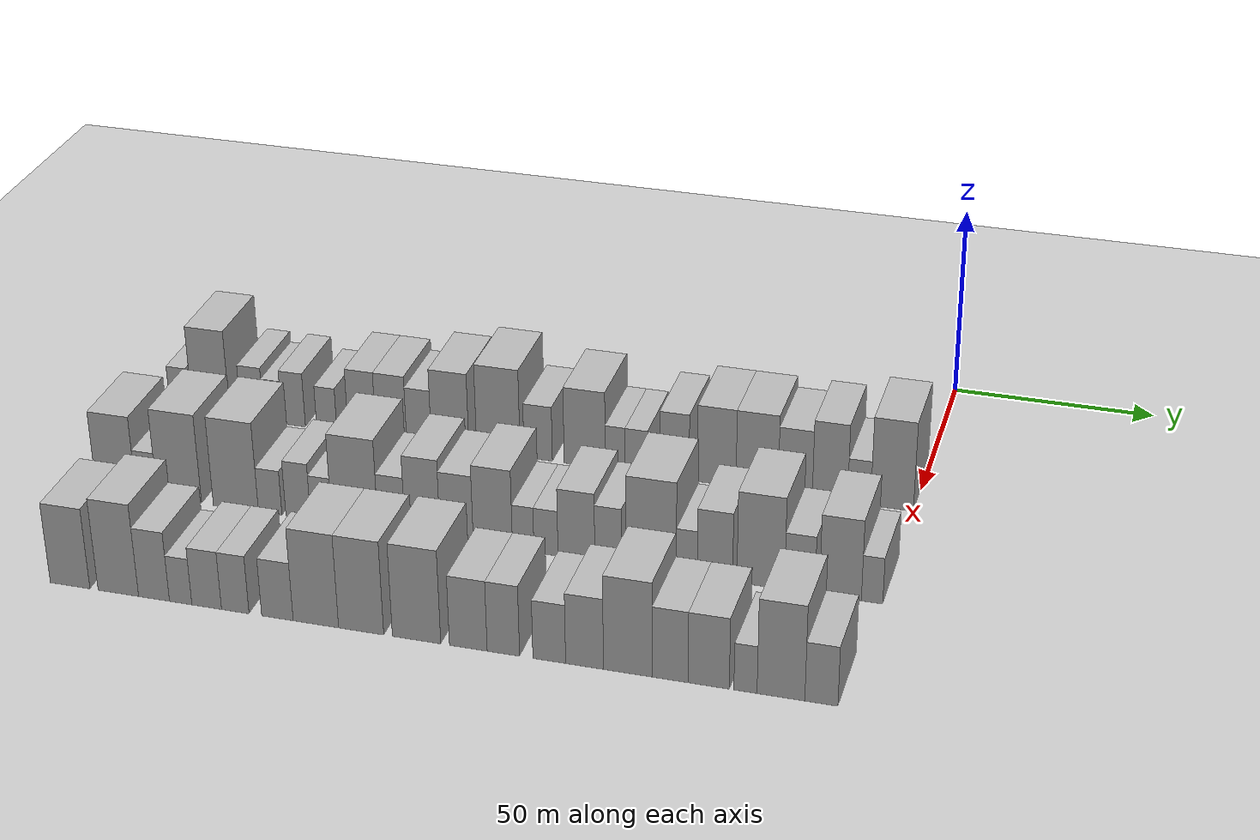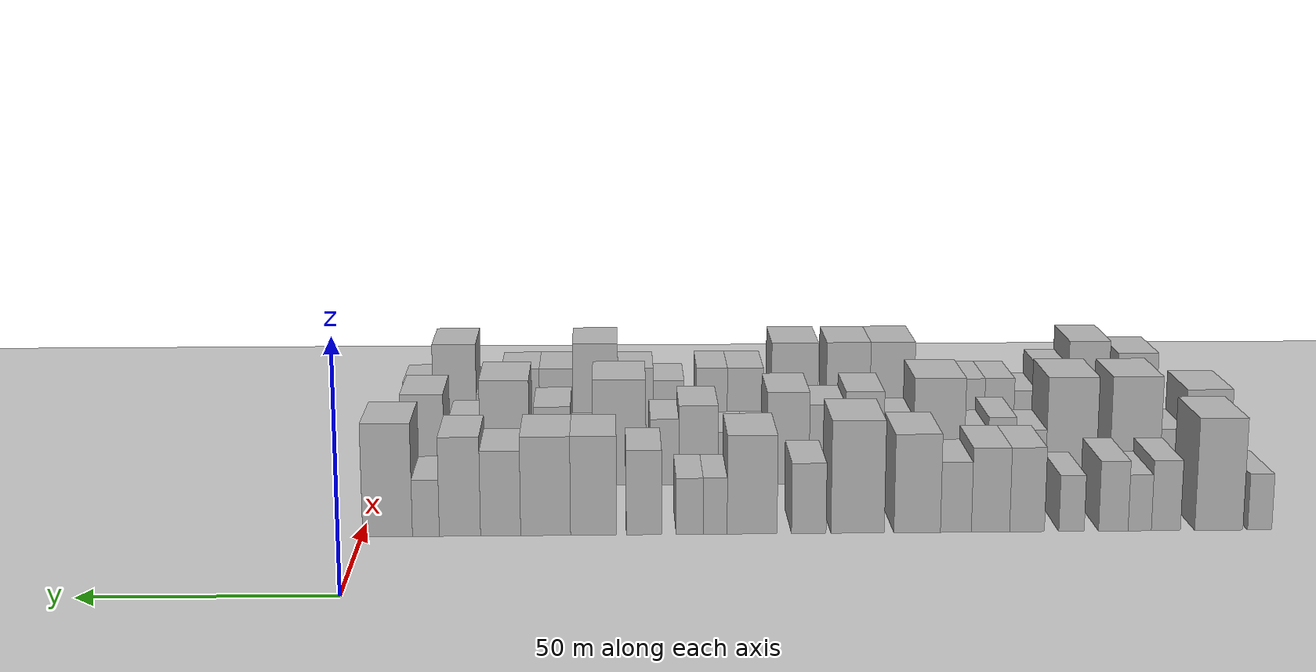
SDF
<sdf version="1.6">
 <world name="default">
  <include><name>ground_plane_1</name><uri>model://HANNAS_ground_plane</uri></include>
  <model name="building_20">
   <static>1</static>
   <pose>50.0000 -186.6804 0 0.000000 0.000000 0.000000</pose>
   <link name="link">
    <pose>0 0 6.00 0 0 0</pose>
    <collision name="collision"><geometry><box><size>20.0000 5.0669 12.0000</size></box></geometry></collision>
    <visual name="visual">
     <cast_shadows>0</cast_shadows>
     <geometry><box><size>20.0000 5.0669 12.0000</size></box></geometry>
     <material>
      <script>
       <uri>model://HANNAS_wall/materials/scripts</uri>
       <uri>model://HANNAS_wall/materials/textures</uri>
       <name>vrc/HANNAS_wall</name>
      </script>
     </material>
    </visual>
   </link>
  </model>
  <model name="building_21">
   <static>1</static>
   <pose>50.0000 -178.0910 0 0.000000 0.000000 0.000000</pose>
   <link name="link">
    <pose>0 0 12.00 0 0 0</pose>
    <collision name="collision"><geometry><box><size>20.0000 10.1119 24.0000</size></box></geometry></collision>
    <visual name="visual">
     <cast_shadows>0</cast_shadows>
     <geometry><box><size>20.0000 10.1119 24.0000</size></box></geometry>
     <material>
      <script>
       <uri>model://HANNAS_wall/materials/scripts</uri>
       <uri>model://HANNAS_wall/materials/textures</uri>
       <name>vrc/HANNAS_wall</name>
      </script>
     </material>
    </visual>
   </link>
  </model>
  <model name="building_22">
   <static>1</static>
   <pose>50.0000 -166.9902 0 0.000000 0.000000 0.000000</pose>
   <link name="link">
    <pose>0 0 7.50 0 0 0</pose>
    <collision name="collision"><geometry><box><size>20.0000 6.0898 15.0000</size></box></geometry></collision>
    <visual name="visual">
     <cast_shadows>0</cast_shadows>
     <geometry><box><size>20.0000 6.0898 15.0000</size></box></geometry>
     <material>
      <script>
       <uri>model://HANNAS_wall/materials/scripts</uri>
       <uri>model://HANNAS_wall/materials/textures</uri>
       <name>vrc/HANNAS_wall</name>
      </script>
     </material>
    </visual>
   </link>
  </model>
  <model name="building_23">
   <static>1</static>
   <pose>50.0000 -161.5102 0 0.000000 0.000000 0.000000</pose>
   <link name="link">
    <pose>0 0 6.00 0 0 0</pose>
    <collision name="collision"><geometry><box><size>20.0000 4.8701 12.0000</size></box></geometry></collision>
    <visual name="visual">
     <cast_shadows>0</cast_shadows>
     <geometry><box><size>20.0000 4.8701 12.0000</size></box></geometry>
     <material>
      <script>
       <uri>model://HANNAS_wall/materials/scripts</uri>
       <uri>model://HANNAS_wall/materials/textures</uri>
       <name>vrc/HANNAS_wall</name>
      </script>
     </material>
    </visual>
   </link>
  </model>
  <model name="building_24">
   <static>1</static>
   <pose>50.0000 -155.9890 0 0.000000 0.000000 0.000000</pose>
   <link name="link">
    <pose>0 0 7.50 0 0 0</pose>
    <collision name="collision"><geometry><box><size>20.0000 6.1724 15.0000</size></box></geometry></collision>
    <visual name="visual">
     <cast_shadows>0</cast_shadows>
     <geometry><box><size>20.0000 6.1724 15.0000</size></box></geometry>
     <material>
      <script>
       <uri>model://HANNAS_wall/materials/scripts</uri>
       <uri>model://HANNAS_wall/materials/textures</uri>
       <name>vrc/HANNAS_wall</name>
      </script>
     </material>
    </visual>
   </link>
  </model>
  <model name="building_25">
   <static>1</static>
   <pose>50.0000 -147.2446 0 0.000000 0.000000 0.000000</pose>
   <link name="link">
    <pose>0 0 6.00 0 0 0</pose>
    <collision name="collision"><geometry><box><size>20.0000 5.3164 12.0000</size></box></geometry></collision>
    <visual name="visual">
     <cast_shadows>0</cast_shadows>
     <geometry><box><size>20.0000 5.3164 12.0000</size></box></geometry>
     <material>
      <script>
       <uri>model://HANNAS_wall/materials/scripts</uri>
       <uri>model://HANNAS_wall/materials/textures</uri>
       <name>vrc/HANNAS_wall</name>
      </script>
     </material>
    </visual>
   </link>
  </model>
  <model name="building_26">
   <static>1</static>
   <pose>50.0000 -137.9398 0 0.000000 0.000000 0.000000</pose>
   <link name="link">
    <pose>0 0 9.00 0 0 0</pose>
    <collision name="collision"><geometry><box><size>20.0000 7.2933 18.0000</size></box></geometry></collision>
    <visual name="visual">
     <cast_shadows>0</cast_shadows>
     <geometry><box><size>20.0000 7.2933 18.0000</size></box></geometry>
     <material>
      <script>
       <uri>model://HANNAS_wall/materials/scripts</uri>
       <uri>model://HANNAS_wall/materials/textures</uri>
       <name>vrc/HANNAS_wall</name>
      </script>
     </material>
    </visual>
   </link>
  </model>
  <model name="building_27">
   <static>1</static>
   <pose>50.0000 -130.3020 0 0.000000 0.000000 0.000000</pose>
   <link name="link">
    <pose>0 0 9.00 0 0 0</pose>
    <collision name="collision"><geometry><box><size>20.0000 7.9821 18.0000</size></box></geometry></collision>
    <visual name="visual">
     <cast_shadows>0</cast_shadows>
     <geometry><box><size>20.0000 7.9821 18.0000</size></box></geometry>
     <material>
      <script>
       <uri>model://HANNAS_wall/materials/scripts</uri>
       <uri>model://HANNAS_wall/materials/textures</uri>
       <name>vrc/HANNAS_wall</name>
      </script>
     </material>
    </visual>
   </link>
  </model>
  <model name="building_28">
   <static>1</static>
   <pose>50.0000 -123.0889 0 0.000000 0.000000 0.000000</pose>
   <link name="link">
    <pose>0 0 7.50 0 0 0</pose>
    <collision name="collision"><geometry><box><size>20.0000 6.4442 15.0000</size></box></geometry></collision>
    <visual name="visual">
     <cast_shadows>0</cast_shadows>
     <geometry><box><size>20.0000 6.4442 15.0000</size></box></geometry>
     <material>
      <script>
       <uri>model://HANNAS_wall/materials/scripts</uri>
       <uri>model://HANNAS_wall/materials/textures</uri>
       <name>vrc/HANNAS_wall</name>
      </script>
     </material>
    </visual>
   </link>
  </model>
  <model name="building_29">
   <static>1</static>
   <pose>50.0000 -115.0239 0 0.000000 0.000000 0.000000</pose>
   <link name="link">
    <pose>0 0 10.50 0 0 0</pose>
    <collision name="collision"><geometry><box><size>20.0000 9.6858 21.0000</size></box></geometry></collision>
    <visual name="visual">
     <cast_shadows>0</cast_shadows>
     <geometry><box><size>20.0000 9.6858 21.0000</size></box></geometry>
     <material>
      <script>
       <uri>model://HANNAS_wall/materials/scripts</uri>
       <uri>model://HANNAS_wall/materials/textures</uri>
       <name>vrc/HANNAS_wall</name>
      </script>
     </material>
    </visual>
   </link>
  </model>
  <model name="building_30">
   <static>1</static>
   <pose>50.0000 -102.6167 0 0.000000 0.000000 0.000000</pose>
   <link name="link">
    <pose>0 0 12.00 0 0 0</pose>
    <collision name="collision"><geometry><box><size>20.0000 11.1286 24.0000</size></box></geometry></collision>
    <visual name="visual">
     <cast_shadows>0</cast_shadows>
     <geometry><box><size>20.0000 11.1286 24.0000</size></box></geometry>
     <material>
      <script>
       <uri>model://HANNAS_wall/materials/scripts</uri>
       <uri>model://HANNAS_wall/materials/textures</uri>
       <name>vrc/HANNAS_wall</name>
      </script>
     </material>
    </visual>
   </link>
  </model>
  <model name="building_31">
   <static>1</static>
   <pose>50.0000 -92.4663 0 0.000000 0.000000 0.000000</pose>
   <link name="link">
    <pose>0 0 7.50 0 0 0</pose>
    <collision name="collision"><geometry><box><size>20.0000 7.1721 15.0000</size></box></geometry></collision>
    <visual name="visual">
     <cast_shadows>0</cast_shadows>
     <geometry><box><size>20.0000 7.1721 15.0000</size></box></geometry>
     <material>
      <script>
       <uri>model://HANNAS_wall/materials/scripts</uri>
       <uri>model://HANNAS_wall/materials/textures</uri>
       <name>vrc/HANNAS_wall</name>
      </script>
     </material>
    </visual>
   </link>
  </model>
  <model name="building_32">
   <static>1</static>
   <pose>50.0000 -80.6968 0 0.000000 0.000000 0.000000</pose>
   <link name="link">
    <pose>0 0 10.50 0 0 0</pose>
    <collision name="collision"><geometry><box><size>20.0000 10.3671 21.0000</size></box></geometry></collision>
    <visual name="visual">
     <cast_shadows>0</cast_shadows>
     <geometry><box><size>20.0000 10.3671 21.0000</size></box></geometry>
     <material>
      <script>
       <uri>model://HANNAS_wall/materials/scripts</uri>
       <uri>model://HANNAS_wall/materials/textures</uri>
       <name>vrc/HANNAS_wall</name>
      </script>
     </material>
    </visual>
   </link>
  </model>
  <model name="building_33">
   <static>1</static>
   <pose>50.0000 -73.0282 0 0.000000 0.000000 0.000000</pose>
   <link name="link">
    <pose>0 0 6.00 0 0 0</pose>
    <collision name="collision"><geometry><box><size>20.0000 4.9700 12.0000</size></box></geometry></collision>
    <visual name="visual">
     <cast_shadows>0</cast_shadows>
     <geometry><box><size>20.0000 4.9700 12.0000</size></box></geometry>
     <material>
      <script>
       <uri>model://HANNAS_wall/materials/scripts</uri>
       <uri>model://HANNAS_wall/materials/textures</uri>
       <name>vrc/HANNAS_wall</name>
      </script>
     </material>
    </visual>
   </link>
  </model>
  <model name="building_34">
   <static>1</static>
   <pose>50.0000 -67.7406 0 0.000000 0.000000 0.000000</pose>
   <link name="link">
    <pose>0 0 6.00 0 0 0</pose>
    <collision name="collision"><geometry><box><size>20.0000 5.6054 12.0000</size></box></geometry></collision>
    <visual name="visual">
     <cast_shadows>0</cast_shadows>
     <geometry><box><size>20.0000 5.6054 12.0000</size></box></geometry>
     <material>
      <script>
       <uri>model://HANNAS_wall/materials/scripts</uri>
       <uri>model://HANNAS_wall/materials/textures</uri>
       <name>vrc/HANNAS_wall</name>
      </script>
     </material>
    </visual>
   </link>
  </model>
  <model name="building_35">
   <static>1</static>
   <pose>50.0000 -58.2778 0 0.000000 0.000000 0.000000</pose>
   <link name="link">
    <pose>0 0 9.00 0 0 0</pose>
    <collision name="collision"><geometry><box><size>20.0000 7.3202 18.0000</size></box></geometry></collision>
    <visual name="visual">
     <cast_shadows>0</cast_shadows>
     <geometry><box><size>20.0000 7.3202 18.0000</size></box></geometry>
     <material>
      <script>
       <uri>model://HANNAS_wall/materials/scripts</uri>
       <uri>model://HANNAS_wall/materials/textures</uri>
       <name>vrc/HANNAS_wall</name>
      </script>
     </material>
    </visual>
   </link>
  </model>
  <model name="building_36">
   <static>1</static>
   <pose>50.0000 -47.8521 0 0.000000 0.000000 0.000000</pose>
   <link name="link">
    <pose>0 0 10.50 0 0 0</pose>
    <collision name="collision"><geometry><box><size>20.0000 9.5311 21.0000</size></box></geometry></collision>
    <visual name="visual">
     <cast_shadows>0</cast_shadows>
     <geometry><box><size>20.0000 9.5311 21.0000</size></box></geometry>
     <material>
      <script>
       <uri>model://HANNAS_wall/materials/scripts</uri>
       <uri>model://HANNAS_wall/materials/textures</uri>
       <name>vrc/HANNAS_wall</name>
      </script>
     </material>
    </visual>
   </link>
  </model>
  <model name="building_37">
   <static>1</static>
   <pose>50.0000 -37.9294 0 0.000000 0.000000 0.000000</pose>
   <link name="link">
    <pose>0 0 10.50 0 0 0</pose>
    <collision name="collision"><geometry><box><size>20.0000 10.3145 21.0000</size></box></geometry></collision>
    <visual name="visual">
     <cast_shadows>0</cast_shadows>
     <geometry><box><size>20.0000 10.3145 21.0000</size></box></geometry>
     <material>
      <script>
       <uri>model://HANNAS_wall/materials/scripts</uri>
       <uri>model://HANNAS_wall/materials/textures</uri>
       <name>vrc/HANNAS_wall</name>
      </script>
     </material>
    </visual>
   </link>
  </model>
  <model name="building_38">
   <static>1</static>
   <pose>50.0000 -28.6333 0 0.000000 0.000000 0.000000</pose>
   <link name="link">
    <pose>0 0 9.00 0 0 0</pose>
    <collision name="collision"><geometry><box><size>20.0000 8.2775 18.0000</size></box></geometry></collision>
    <visual name="visual">
     <cast_shadows>0</cast_shadows>
     <geometry><box><size>20.0000 8.2775 18.0000</size></box></geometry>
     <material>
      <script>
       <uri>model://HANNAS_wall/materials/scripts</uri>
       <uri>model://HANNAS_wall/materials/textures</uri>
       <name>vrc/HANNAS_wall</name>
      </script>
     </material>
    </visual>
   </link>
  </model>
  <model name="building_39">
   <static>1</static>
   <pose>50.0000 -20.2456 0 0.000000 0.000000 0.000000</pose>
   <link name="link">
    <pose>0 0 10.50 0 0 0</pose>
    <collision name="collision"><geometry><box><size>20.0000 8.4980 21.0000</size></box></geometry></collision>
    <visual name="visual">
     <cast_shadows>0</cast_shadows>
     <geometry><box><size>20.0000 8.4980 21.0000</size></box></geometry>
     <material>
      <script>
       <uri>model://HANNAS_wall/materials/scripts</uri>
       <uri>model://HANNAS_wall/materials/textures</uri>
       <name>vrc/HANNAS_wall</name>
      </script>
     </material>
    </visual>
   </link>
  </model>
  <model name="building_40">
   <static>1</static>
   <pose>50.0000 -13.2256 0 0.000000 0.000000 0.000000</pose>
   <link name="link">
    <pose>0 0 6.00 0 0 0</pose>
    <collision name="collision"><geometry><box><size>20.0000 5.5419 12.0000</size></box></geometry></collision>
    <visual name="visual">
     <cast_shadows>0</cast_shadows>
     <geometry><box><size>20.0000 5.5419 12.0000</size></box></geometry>
     <material>
      <script>
       <uri>model://HANNAS_wall/materials/scripts</uri>
       <uri>model://HANNAS_wall/materials/textures</uri>
       <name>vrc/HANNAS_wall</name>
      </script>
     </material>
    </visual>
   </link>
  </model>
  <model name="building_41">
   <static>1</static>
   <pose>50.0000 -5.3358 0 0.000000 0.000000 0.000000</pose>
   <link name="link">
    <pose>0 0 12.00 0 0 0</pose>
    <collision name="collision"><geometry><box><size>20.0000 10.2376 24.0000</size></box></geometry></collision>
    <visual name="visual">
     <cast_shadows>0</cast_shadows>
     <geometry><box><size>20.0000 10.2376 24.0000</size></box></geometry>
     <material>
      <script>
       <uri>model://HANNAS_wall/materials/scripts</uri>
       <uri>model://HANNAS_wall/materials/textures</uri>
       <name>vrc/HANNAS_wall</name>
      </script>
     </material>
    </visual>
   </link>
  </model>
  <model name="building_106">
   <static>1</static>
   <pose>90.0000 -185.3101 0 0.000000 0.000000 0.000000</pose>
   <link name="link">
    <pose>0 0 10.50 0 0 0</pose>
    <collision name="collision"><geometry><box><size>20.0000 10.3520 21.0000</size></box></geometry></collision>
    <visual name="visual">
     <cast_shadows>0</cast_shadows>
     <geometry><box><size>20.0000 10.3520 21.0000</size></box></geometry>
     <material>
      <script>
       <uri>model://HANNAS_wall/materials/scripts</uri>
       <uri>model://HANNAS_wall/materials/textures</uri>
       <name>vrc/HANNAS_wall</name>
      </script>
     </material>
    </visual>
   </link>
  </model>
  <model name="building_107">
   <static>1</static>
   <pose>90.0000 -177.4071 0 0.000000 0.000000 0.000000</pose>
   <link name="link">
    <pose>0 0 6.00 0 0 0</pose>
    <collision name="collision"><geometry><box><size>20.0000 5.4541 12.0000</size></box></geometry></collision>
    <visual name="visual">
     <cast_shadows>0</cast_shadows>
     <geometry><box><size>20.0000 5.4541 12.0000</size></box></geometry>
     <material>
      <script>
       <uri>model://HANNAS_wall/materials/scripts</uri>
       <uri>model://HANNAS_wall/materials/textures</uri>
       <name>vrc/HANNAS_wall</name>
      </script>
     </material>
    </visual>
   </link>
  </model>
  <model name="building_108">
   <static>1</static>
   <pose>90.0000 -169.0125 0 0.000000 0.000000 0.000000</pose>
   <link name="link">
    <pose>0 0 12.00 0 0 0</pose>
    <collision name="collision"><geometry><box><size>20.0000 11.3349 24.0000</size></box></geometry></collision>
    <visual name="visual">
     <cast_shadows>0</cast_shadows>
     <geometry><box><size>20.0000 11.3349 24.0000</size></box></geometry>
     <material>
      <script>
       <uri>model://HANNAS_wall/materials/scripts</uri>
       <uri>model://HANNAS_wall/materials/textures</uri>
       <name>vrc/HANNAS_wall</name>
      </script>
     </material>
    </visual>
   </link>
  </model>
  <model name="building_109">
   <static>1</static>
   <pose>90.0000 -154.6408 0 0.000000 0.000000 0.000000</pose>
   <link name="link">
    <pose>0 0 12.00 0 0 0</pose>
    <collision name="collision"><geometry><box><size>20.0000 11.4085 24.0000</size></box></geometry></collision>
    <visual name="visual">
     <cast_shadows>0</cast_shadows>
     <geometry><box><size>20.0000 11.4085 24.0000</size></box></geometry>
     <material>
      <script>
       <uri>model://HANNAS_wall/materials/scripts</uri>
       <uri>model://HANNAS_wall/materials/textures</uri>
       <name>vrc/HANNAS_wall</name>
      </script>
     </material>
    </visual>
   </link>
  </model>
  <model name="building_110">
   <static>1</static>
   <pose>90.0000 -145.9780 0 0.000000 0.000000 0.000000</pose>
   <link name="link">
    <pose>0 0 6.00 0 0 0</pose>
    <collision name="collision"><geometry><box><size>20.0000 5.9173 12.0000</size></box></geometry></collision>
    <visual name="visual">
     <cast_shadows>0</cast_shadows>
     <geometry><box><size>20.0000 5.9173 12.0000</size></box></geometry>
     <material>
      <script>
       <uri>model://HANNAS_wall/materials/scripts</uri>
       <uri>model://HANNAS_wall/materials/textures</uri>
       <name>vrc/HANNAS_wall</name>
      </script>
     </material>
    </visual>
   </link>
  </model>
  <model name="building_111">
   <static>1</static>
   <pose>90.0000 -138.9313 0 0.000000 0.000000 0.000000</pose>
   <link name="link">
    <pose>0 0 7.50 0 0 0</pose>
    <collision name="collision"><geometry><box><size>20.0000 6.1761 15.0000</size></box></geometry></collision>
    <visual name="visual">
     <cast_shadows>0</cast_shadows>
     <geometry><box><size>20.0000 6.1761 15.0000</size></box></geometry>
     <material>
      <script>
       <uri>model://HANNAS_wall/materials/scripts</uri>
       <uri>model://HANNAS_wall/materials/textures</uri>
       <name>vrc/HANNAS_wall</name>
      </script>
     </material>
    </visual>
   </link>
  </model>
  <model name="building_112">
   <static>1</static>
   <pose>90.0000 -133.1968 0 0.000000 0.000000 0.000000</pose>
   <link name="link">
    <pose>0 0 6.00 0 0 0</pose>
    <collision name="collision"><geometry><box><size>20.0000 5.2930 12.0000</size></box></geometry></collision>
    <visual name="visual">
     <cast_shadows>0</cast_shadows>
     <geometry><box><size>20.0000 5.2930 12.0000</size></box></geometry>
     <material>
      <script>
       <uri>model://HANNAS_wall/materials/scripts</uri>
       <uri>model://HANNAS_wall/materials/textures</uri>
       <name>vrc/HANNAS_wall</name>
      </script>
     </material>
    </visual>
   </link>
  </model>
  <model name="building_113">
   <static>1</static>
   <pose>90.0000 -124.8135 0 0.000000 0.000000 0.000000</pose>
   <link name="link">
    <pose>0 0 12.00 0 0 0</pose>
    <collision name="collision"><geometry><box><size>20.0000 11.4736 24.0000</size></box></geometry></collision>
    <visual name="visual">
     <cast_shadows>0</cast_shadows>
     <geometry><box><size>20.0000 11.4736 24.0000</size></box></geometry>
     <material>
      <script>
       <uri>model://HANNAS_wall/materials/scripts</uri>
       <uri>model://HANNAS_wall/materials/textures</uri>
       <name>vrc/HANNAS_wall</name>
      </script>
     </material>
    </visual>
   </link>
  </model>
  <model name="building_114">
   <static>1</static>
   <pose>90.0000 -115.7517 0 0.000000 0.000000 0.000000</pose>
   <link name="link">
    <pose>0 0 7.50 0 0 0</pose>
    <collision name="collision"><geometry><box><size>20.0000 6.6500 15.0000</size></box></geometry></collision>
    <visual name="visual">
     <cast_shadows>0</cast_shadows>
     <geometry><box><size>20.0000 6.6500 15.0000</size></box></geometry>
     <material>
      <script>
       <uri>model://HANNAS_wall/materials/scripts</uri>
       <uri>model://HANNAS_wall/materials/textures</uri>
       <name>vrc/HANNAS_wall</name>
      </script>
     </material>
    </visual>
   </link>
  </model>
  <model name="building_115">
   <static>1</static>
   <pose>90.0000 -108.1377 0 0.000000 0.000000 0.000000</pose>
   <link name="link">
    <pose>0 0 10.50 0 0 0</pose>
    <collision name="collision"><geometry><box><size>20.0000 8.5780 21.0000</size></box></geometry></collision>
    <visual name="visual">
     <cast_shadows>0</cast_shadows>
     <geometry><box><size>20.0000 8.5780 21.0000</size></box></geometry>
     <material>
      <script>
       <uri>model://HANNAS_wall/materials/scripts</uri>
       <uri>model://HANNAS_wall/materials/textures</uri>
       <name>vrc/HANNAS_wall</name>
      </script>
     </material>
    </visual>
   </link>
  </model>
  <model name="building_116">
   <static>1</static>
   <pose>90.0000 -99.8163 0 0.000000 0.000000 0.000000</pose>
   <link name="link">
    <pose>0 0 9.00 0 0 0</pose>
    <collision name="collision"><geometry><box><size>20.0000 8.0649 18.0000</size></box></geometry></collision>
    <visual name="visual">
     <cast_shadows>0</cast_shadows>
     <geometry><box><size>20.0000 8.0649 18.0000</size></box></geometry>
     <material>
      <script>
       <uri>model://HANNAS_wall/materials/scripts</uri>
       <uri>model://HANNAS_wall/materials/textures</uri>
       <name>vrc/HANNAS_wall</name>
      </script>
     </material>
    </visual>
   </link>
  </model>
  <model name="building_117">
   <static>1</static>
   <pose>90.0000 -91.0506 0 0.000000 0.000000 0.000000</pose>
   <link name="link">
    <pose>0 0 10.50 0 0 0</pose>
    <collision name="collision"><geometry><box><size>20.0000 9.4666 21.0000</size></box></geometry></collision>
    <visual name="visual">
     <cast_shadows>0</cast_shadows>
     <geometry><box><size>20.0000 9.4666 21.0000</size></box></geometry>
     <material>
      <script>
       <uri>model://HANNAS_wall/materials/scripts</uri>
       <uri>model://HANNAS_wall/materials/textures</uri>
       <name>vrc/HANNAS_wall</name>
      </script>
     </material>
    </visual>
   </link>
  </model>
  <model name="building_118">
   <static>1</static>
   <pose>90.0000 -83.7427 0 0.000000 0.000000 0.000000</pose>
   <link name="link">
    <pose>0 0 6.00 0 0 0</pose>
    <collision name="collision"><geometry><box><size>20.0000 5.1492 12.0000</size></box></geometry></collision>
    <visual name="visual">
     <cast_shadows>0</cast_shadows>
     <geometry><box><size>20.0000 5.1492 12.0000</size></box></geometry>
     <material>
      <script>
       <uri>model://HANNAS_wall/materials/scripts</uri>
       <uri>model://HANNAS_wall/materials/textures</uri>
       <name>vrc/HANNAS_wall</name>
      </script>
     </material>
    </visual>
   </link>
  </model>
  <model name="building_119">
   <static>1</static>
   <pose>90.0000 -78.2927 0 0.000000 0.000000 0.000000</pose>
   <link name="link">
    <pose>0 0 6.00 0 0 0</pose>
    <collision name="collision"><geometry><box><size>20.0000 5.7506 12.0000</size></box></geometry></collision>
    <visual name="visual">
     <cast_shadows>0</cast_shadows>
     <geometry><box><size>20.0000 5.7506 12.0000</size></box></geometry>
     <material>
      <script>
       <uri>model://HANNAS_wall/materials/scripts</uri>
       <uri>model://HANNAS_wall/materials/textures</uri>
       <name>vrc/HANNAS_wall</name>
      </script>
     </material>
    </visual>
   </link>
  </model>
  <model name="building_120">
   <static>1</static>
   <pose>90.0000 -71.0356 0 0.000000 0.000000 0.000000</pose>
   <link name="link">
    <pose>0 0 9.00 0 0 0</pose>
    <collision name="collision"><geometry><box><size>20.0000 8.7636 18.0000</size></box></geometry></collision>
    <visual name="visual">
     <cast_shadows>0</cast_shadows>
     <geometry><box><size>20.0000 8.7636 18.0000</size></box></geometry>
     <material>
      <script>
       <uri>model://HANNAS_wall/materials/scripts</uri>
       <uri>model://HANNAS_wall/materials/textures</uri>
       <name>vrc/HANNAS_wall</name>
      </script>
     </material>
    </visual>
   </link>
  </model>
  <model name="building_121">
   <static>1</static>
   <pose>90.0000 -63.4785 0 0.000000 0.000000 0.000000</pose>
   <link name="link">
    <pose>0 0 7.50 0 0 0</pose>
    <collision name="collision"><geometry><box><size>20.0000 6.3506 15.0000</size></box></geometry></collision>
    <visual name="visual">
     <cast_shadows>0</cast_shadows>
     <geometry><box><size>20.0000 6.3506 15.0000</size></box></geometry>
     <material>
      <script>
       <uri>model://HANNAS_wall/materials/scripts</uri>
       <uri>model://HANNAS_wall/materials/textures</uri>
       <name>vrc/HANNAS_wall</name>
      </script>
     </material>
    </visual>
   </link>
  </model>
  <model name="building_122">
   <static>1</static>
   <pose>90.0000 -53.3800 0 0.000000 0.000000 0.000000</pose>
   <link name="link">
    <pose>0 0 12.00 0 0 0</pose>
    <collision name="collision"><geometry><box><size>20.0000 11.8463 24.0000</size></box></geometry></collision>
    <visual name="visual">
     <cast_shadows>0</cast_shadows>
     <geometry><box><size>20.0000 11.8463 24.0000</size></box></geometry>
     <material>
      <script>
       <uri>model://HANNAS_wall/materials/scripts</uri>
       <uri>model://HANNAS_wall/materials/textures</uri>
       <name>vrc/HANNAS_wall</name>
      </script>
     </material>
    </visual>
   </link>
  </model>
  <model name="building_123">
   <static>1</static>
   <pose>90.0000 -45.0195 0 0.000000 0.000000 0.000000</pose>
   <link name="link">
    <pose>0 0 6.00 0 0 0</pose>
    <collision name="collision"><geometry><box><size>20.0000 4.8748 12.0000</size></box></geometry></collision>
    <visual name="visual">
     <cast_shadows>0</cast_shadows>
     <geometry><box><size>20.0000 4.8748 12.0000</size></box></geometry>
     <material>
      <script>
       <uri>model://HANNAS_wall/materials/scripts</uri>
       <uri>model://HANNAS_wall/materials/textures</uri>
       <name>vrc/HANNAS_wall</name>
      </script>
     </material>
    </visual>
   </link>
  </model>
  <model name="building_124">
   <static>1</static>
   <pose>90.0000 -38.4785 0 0.000000 0.000000 0.000000</pose>
   <link name="link">
    <pose>0 0 9.00 0 0 0</pose>
    <collision name="collision"><geometry><box><size>20.0000 8.2070 18.0000</size></box></geometry></collision>
    <visual name="visual">
     <cast_shadows>0</cast_shadows>
     <geometry><box><size>20.0000 8.2070 18.0000</size></box></geometry>
     <material>
      <script>
       <uri>model://HANNAS_wall/materials/scripts</uri>
       <uri>model://HANNAS_wall/materials/textures</uri>
       <name>vrc/HANNAS_wall</name>
      </script>
     </material>
    </visual>
   </link>
  </model>
  <model name="building_125">
   <static>1</static>
   <pose>90.0000 -27.8990 0 0.000000 0.000000 0.000000</pose>
   <link name="link">
    <pose>0 0 12.00 0 0 0</pose>
    <collision name="collision"><geometry><box><size>20.0000 10.9520 24.0000</size></box></geometry></collision>
    <visual name="visual">
     <cast_shadows>0</cast_shadows>
     <geometry><box><size>20.0000 10.9520 24.0000</size></box></geometry>
     <material>
      <script>
       <uri>model://HANNAS_wall/materials/scripts</uri>
       <uri>model://HANNAS_wall/materials/textures</uri>
       <name>vrc/HANNAS_wall</name>
      </script>
     </material>
    </visual>
   </link>
  </model>
  <model name="building_126">
   <static>1</static>
   <pose>90.0000 -18.9340 0 0.000000 0.000000 0.000000</pose>
   <link name="link">
    <pose>0 0 7.50 0 0 0</pose>
    <collision name="collision"><geometry><box><size>20.0000 6.9781 15.0000</size></box></geometry></collision>
    <visual name="visual">
     <cast_shadows>0</cast_shadows>
     <geometry><box><size>20.0000 6.9781 15.0000</size></box></geometry>
     <material>
      <script>
       <uri>model://HANNAS_wall/materials/scripts</uri>
       <uri>model://HANNAS_wall/materials/textures</uri>
       <name>vrc/HANNAS_wall</name>
      </script>
     </material>
    </visual>
   </link>
  </model>
  <model name="building_127">
   <static>1</static>
   <pose>90.0000 -9.6669 0 0.000000 0.000000 0.000000</pose>
   <link name="link">
    <pose>0 0 10.50 0 0 0</pose>
    <collision name="collision"><geometry><box><size>20.0000 9.5561 21.0000</size></box></geometry></collision>
    <visual name="visual">
     <cast_shadows>0</cast_shadows>
     <geometry><box><size>20.0000 9.5561 21.0000</size></box></geometry>
     <material>
      <script>
       <uri>model://HANNAS_wall/materials/scripts</uri>
       <uri>model://HANNAS_wall/materials/textures</uri>
       <name>vrc/HANNAS_wall</name>
      </script>
     </material>
    </visual>
   </link>
  </model>
  <model name="building_128">
   <static>1</static>
   <pose>90.0000 -2.4647 0 0.000000 0.000000 0.000000</pose>
   <link name="link">
    <pose>0 0 6.00 0 0 0</pose>
    <collision name="collision"><geometry><box><size>20.0000 4.8483 12.0000</size></box></geometry></collision>
    <visual name="visual">
     <cast_shadows>0</cast_shadows>
     <geometry><box><size>20.0000 4.8483 12.0000</size></box></geometry>
     <material>
      <script>
       <uri>model://HANNAS_wall/materials/scripts</uri>
       <uri>model://HANNAS_wall/materials/textures</uri>
       <name>vrc/HANNAS_wall</name>
      </script>
     </material>
    </visual>
   </link>
  </model>
  <model name="building_196">
   <static>1</static>
   <pose>130.0000 -177.8656 0 0.000000 0.000000 0.000000</pose>
   <link name="link">
    <pose>0 0 10.50 0 0 0</pose>
    <collision name="collision"><geometry><box><size>20.0000 9.7025 21.0000</size></box></geometry></collision>
    <visual name="visual">
     <cast_shadows>0</cast_shadows>
     <geometry><box><size>20.0000 9.7025 21.0000</size></box></geometry>
     <material>
      <script>
       <uri>model://HANNAS_wall/materials/scripts</uri>
       <uri>model://HANNAS_wall/materials/textures</uri>
       <name>vrc/HANNAS_wall</name>
      </script>
     </material>
    </visual>
   </link>
  </model>
  <model name="building_197">
   <static>1</static>
   <pose>130.0000 -166.0887 0 0.000000 0.000000 0.000000</pose>
   <link name="link">
    <pose>0 0 12.00 0 0 0</pose>
    <collision name="collision"><geometry><box><size>20.0000 9.8514 24.0000</size></box></geometry></collision>
    <visual name="visual">
     <cast_shadows>0</cast_shadows>
     <geometry><box><size>20.0000 9.8514 24.0000</size></box></geometry>
     <material>
      <script>
       <uri>model://HANNAS_wall/materials/scripts</uri>
       <uri>model://HANNAS_wall/materials/textures</uri>
       <name>vrc/HANNAS_wall</name>
      </script>
     </material>
    </visual>
   </link>
  </model>
  <model name="building_198">
   <static>1</static>
   <pose>130.0000 -157.4357 0 0.000000 0.000000 0.000000</pose>
   <link name="link">
    <pose>0 0 9.00 0 0 0</pose>
    <collision name="collision"><geometry><box><size>20.0000 7.4544 18.0000</size></box></geometry></collision>
    <visual name="visual">
     <cast_shadows>0</cast_shadows>
     <geometry><box><size>20.0000 7.4544 18.0000</size></box></geometry>
     <material>
      <script>
       <uri>model://HANNAS_wall/materials/scripts</uri>
       <uri>model://HANNAS_wall/materials/textures</uri>
       <name>vrc/HANNAS_wall</name>
      </script>
     </material>
    </visual>
   </link>
  </model>
  <model name="building_199">
   <static>1</static>
   <pose>130.0000 -151.0155 0 0.000000 0.000000 0.000000</pose>
   <link name="link">
    <pose>0 0 6.00 0 0 0</pose>
    <collision name="collision"><geometry><box><size>20.0000 5.3860 12.0000</size></box></geometry></collision>
    <visual name="visual">
     <cast_shadows>0</cast_shadows>
     <geometry><box><size>20.0000 5.3860 12.0000</size></box></geometry>
     <material>
      <script>
       <uri>model://HANNAS_wall/materials/scripts</uri>
       <uri>model://HANNAS_wall/materials/textures</uri>
       <name>vrc/HANNAS_wall</name>
      </script>
     </material>
    </visual>
   </link>
  </model>
  <model name="building_200">
   <static>1</static>
   <pose>130.0000 -144.7751 0 0.000000 0.000000 0.000000</pose>
   <link name="link">
    <pose>0 0 7.50 0 0 0</pose>
    <collision name="collision"><geometry><box><size>20.0000 7.0948 15.0000</size></box></geometry></collision>
    <visual name="visual">
     <cast_shadows>0</cast_shadows>
     <geometry><box><size>20.0000 7.0948 15.0000</size></box></geometry>
     <material>
      <script>
       <uri>model://HANNAS_wall/materials/scripts</uri>
       <uri>model://HANNAS_wall/materials/textures</uri>
       <name>vrc/HANNAS_wall</name>
      </script>
     </material>
    </visual>
   </link>
  </model>
  <model name="building_201">
   <static>1</static>
   <pose>130.0000 -137.9590 0 0.000000 0.000000 0.000000</pose>
   <link name="link">
    <pose>0 0 7.50 0 0 0</pose>
    <collision name="collision"><geometry><box><size>20.0000 6.5375 15.0000</size></box></geometry></collision>
    <visual name="visual">
     <cast_shadows>0</cast_shadows>
     <geometry><box><size>20.0000 6.5375 15.0000</size></box></geometry>
     <material>
      <script>
       <uri>model://HANNAS_wall/materials/scripts</uri>
       <uri>model://HANNAS_wall/materials/textures</uri>
       <name>vrc/HANNAS_wall</name>
      </script>
     </material>
    </visual>
   </link>
  </model>
  <model name="building_202">
   <static>1</static>
   <pose>130.0000 -127.9694 0 0.000000 0.000000 0.000000</pose>
   <link name="link">
    <pose>0 0 7.50 0 0 0</pose>
    <collision name="collision"><geometry><box><size>20.0000 7.4417 15.0000</size></box></geometry></collision>
    <visual name="visual">
     <cast_shadows>0</cast_shadows>
     <geometry><box><size>20.0000 7.4417 15.0000</size></box></geometry>
     <material>
      <script>
       <uri>model://HANNAS_wall/materials/scripts</uri>
       <uri>model://HANNAS_wall/materials/textures</uri>
       <name>vrc/HANNAS_wall</name>
      </script>
     </material>
    </visual>
   </link>
  </model>
  <model name="building_203">
   <static>1</static>
   <pose>130.0000 -118.9278 0 0.000000 0.000000 0.000000</pose>
   <link name="link">
    <pose>0 0 12.00 0 0 0</pose>
    <collision name="collision"><geometry><box><size>20.0000 10.6416 24.0000</size></box></geometry></collision>
    <visual name="visual">
     <cast_shadows>0</cast_shadows>
     <geometry><box><size>20.0000 10.6416 24.0000</size></box></geometry>
     <material>
      <script>
       <uri>model://HANNAS_wall/materials/scripts</uri>
       <uri>model://HANNAS_wall/materials/textures</uri>
       <name>vrc/HANNAS_wall</name>
      </script>
     </material>
    </visual>
   </link>
  </model>
  <model name="building_204">
   <static>1</static>
   <pose>130.0000 -108.3566 0 0.000000 0.000000 0.000000</pose>
   <link name="link">
    <pose>0 0 12.00 0 0 0</pose>
    <collision name="collision"><geometry><box><size>20.0000 10.5008 24.0000</size></box></geometry></collision>
    <visual name="visual">
     <cast_shadows>0</cast_shadows>
     <geometry><box><size>20.0000 10.5008 24.0000</size></box></geometry>
     <material>
      <script>
       <uri>model://HANNAS_wall/materials/scripts</uri>
       <uri>model://HANNAS_wall/materials/textures</uri>
       <name>vrc/HANNAS_wall</name>
      </script>
     </material>
    </visual>
   </link>
  </model>
  <model name="building_205">
   <static>1</static>
   <pose>130.0000 -95.5388 0 0.000000 0.000000 0.000000</pose>
   <link name="link">
    <pose>0 0 12.00 0 0 0</pose>
    <collision name="collision"><geometry><box><size>20.0000 11.1348 24.0000</size></box></geometry></collision>
    <visual name="visual">
     <cast_shadows>0</cast_shadows>
     <geometry><box><size>20.0000 11.1348 24.0000</size></box></geometry>
     <material>
      <script>
       <uri>model://HANNAS_wall/materials/scripts</uri>
       <uri>model://HANNAS_wall/materials/textures</uri>
       <name>vrc/HANNAS_wall</name>
      </script>
     </material>
    </visual>
   </link>
  </model>
  <model name="building_206">
   <static>1</static>
   <pose>130.0000 -83.6761 0 0.000000 0.000000 0.000000</pose>
   <link name="link">
    <pose>0 0 9.00 0 0 0</pose>
    <collision name="collision"><geometry><box><size>20.0000 8.5906 18.0000</size></box></geometry></collision>
    <visual name="visual">
     <cast_shadows>0</cast_shadows>
     <geometry><box><size>20.0000 8.5906 18.0000</size></box></geometry>
     <material>
      <script>
       <uri>model://HANNAS_wall/materials/scripts</uri>
       <uri>model://HANNAS_wall/materials/textures</uri>
       <name>vrc/HANNAS_wall</name>
      </script>
     </material>
    </visual>
   </link>
  </model>
  <model name="building_207">
   <static>1</static>
   <pose>130.0000 -75.7062 0 0.000000 0.000000 0.000000</pose>
   <link name="link">
    <pose>0 0 9.00 0 0 0</pose>
    <collision name="collision"><geometry><box><size>20.0000 7.3491 18.0000</size></box></geometry></collision>
    <visual name="visual">
     <cast_shadows>0</cast_shadows>
     <geometry><box><size>20.0000 7.3491 18.0000</size></box></geometry>
     <material>
      <script>
       <uri>model://HANNAS_wall/materials/scripts</uri>
       <uri>model://HANNAS_wall/materials/textures</uri>
       <name>vrc/HANNAS_wall</name>
      </script>
     </material>
    </visual>
   </link>
  </model>
  <model name="building_208">
   <static>1</static>
   <pose>130.0000 -65.3542 0 0.000000 0.000000 0.000000</pose>
   <link name="link">
    <pose>0 0 7.50 0 0 0</pose>
    <collision name="collision"><geometry><box><size>20.0000 7.3549 15.0000</size></box></geometry></collision>
    <visual name="visual">
     <cast_shadows>0</cast_shadows>
     <geometry><box><size>20.0000 7.3549 15.0000</size></box></geometry>
     <material>
      <script>
       <uri>model://HANNAS_wall/materials/scripts</uri>
       <uri>model://HANNAS_wall/materials/textures</uri>
       <name>vrc/HANNAS_wall</name>
      </script>
     </material>
    </visual>
   </link>
  </model>
  <model name="building_209">
   <static>1</static>
   <pose>130.0000 -57.4525 0 0.000000 0.000000 0.000000</pose>
   <link name="link">
    <pose>0 0 9.00 0 0 0</pose>
    <collision name="collision"><geometry><box><size>20.0000 8.4486 18.0000</size></box></geometry></collision>
    <visual name="visual">
     <cast_shadows>0</cast_shadows>
     <geometry><box><size>20.0000 8.4486 18.0000</size></box></geometry>
     <material>
      <script>
       <uri>model://HANNAS_wall/materials/scripts</uri>
       <uri>model://HANNAS_wall/materials/textures</uri>
       <name>vrc/HANNAS_wall</name>
      </script>
     </material>
    </visual>
   </link>
  </model>
  <model name="building_210">
   <static>1</static>
   <pose>130.0000 -47.8480 0 0.000000 0.000000 0.000000</pose>
   <link name="link">
    <pose>0 0 12.00 0 0 0</pose>
    <collision name="collision"><geometry><box><size>20.0000 10.7603 24.0000</size></box></geometry></collision>
    <visual name="visual">
     <cast_shadows>0</cast_shadows>
     <geometry><box><size>20.0000 10.7603 24.0000</size></box></geometry>
     <material>
      <script>
       <uri>model://HANNAS_wall/materials/scripts</uri>
       <uri>model://HANNAS_wall/materials/textures</uri>
       <name>vrc/HANNAS_wall</name>
      </script>
     </material>
    </visual>
   </link>
  </model>
  <model name="building_211">
   <static>1</static>
   <pose>130.0000 -38.4958 0 0.000000 0.000000 0.000000</pose>
   <link name="link">
    <pose>0 0 9.00 0 0 0</pose>
    <collision name="collision"><geometry><box><size>20.0000 7.9442 18.0000</size></box></geometry></collision>
    <visual name="visual">
     <cast_shadows>0</cast_shadows>
     <geometry><box><size>20.0000 7.9442 18.0000</size></box></geometry>
     <material>
      <script>
       <uri>model://HANNAS_wall/materials/scripts</uri>
       <uri>model://HANNAS_wall/materials/textures</uri>
       <name>vrc/HANNAS_wall</name>
      </script>
     </material>
    </visual>
   </link>
  </model>
  <model name="building_212">
   <static>1</static>
   <pose>130.0000 -30.0282 0 0.000000 0.000000 0.000000</pose>
   <link name="link">
    <pose>0 0 9.00 0 0 0</pose>
    <collision name="collision"><geometry><box><size>20.0000 8.9909 18.0000</size></box></geometry></collision>
    <visual name="visual">
     <cast_shadows>0</cast_shadows>
     <geometry><box><size>20.0000 8.9909 18.0000</size></box></geometry>
     <material>
      <script>
       <uri>model://HANNAS_wall/materials/scripts</uri>
       <uri>model://HANNAS_wall/materials/textures</uri>
       <name>vrc/HANNAS_wall</name>
      </script>
     </material>
    </visual>
   </link>
  </model>
  <model name="building_213">
   <static>1</static>
   <pose>130.0000 -22.0231 0 0.000000 0.000000 0.000000</pose>
   <link name="link">
    <pose>0 0 6.00 0 0 0</pose>
    <collision name="collision"><geometry><box><size>20.0000 5.0193 12.0000</size></box></geometry></collision>
    <visual name="visual">
     <cast_shadows>0</cast_shadows>
     <geometry><box><size>20.0000 5.0193 12.0000</size></box></geometry>
     <material>
      <script>
       <uri>model://HANNAS_wall/materials/scripts</uri>
       <uri>model://HANNAS_wall/materials/textures</uri>
       <name>vrc/HANNAS_wall</name>
      </script>
     </material>
    </visual>
   </link>
  </model>
  <model name="building_214">
   <static>1</static>
   <pose>130.0000 -14.3599 0 0.000000 0.000000 0.000000</pose>
   <link name="link">
    <pose>0 0 12.00 0 0 0</pose>
    <collision name="collision"><geometry><box><size>20.0000 10.3070 24.0000</size></box></geometry></collision>
    <visual name="visual">
     <cast_shadows>0</cast_shadows>
     <geometry><box><size>20.0000 10.3070 24.0000</size></box></geometry>
     <material>
      <script>
       <uri>model://HANNAS_wall/materials/scripts</uri>
       <uri>model://HANNAS_wall/materials/textures</uri>
       <name>vrc/HANNAS_wall</name>
      </script>
     </material>
    </visual>
   </link>
  </model>
  <model name="building_215">
   <static>1</static>
   <pose>130.0000 -5.6601 0 0.000000 0.000000 0.000000</pose>
   <link name="link">
    <pose>0 0 7.50 0 0 0</pose>
    <collision name="collision"><geometry><box><size>20.0000 7.0927 15.0000</size></box></geometry></collision>
    <visual name="visual">
     <cast_shadows>0</cast_shadows>
     <geometry><box><size>20.0000 7.0927 15.0000</size></box></geometry>
     <material>
      <script>
       <uri>model://HANNAS_wall/materials/scripts</uri>
       <uri>model://HANNAS_wall/materials/textures</uri>
       <name>vrc/HANNAS_wall</name>
      </script>
     </material>
    </visual>
   </link>
  </model>
 </world>
</sdf>
